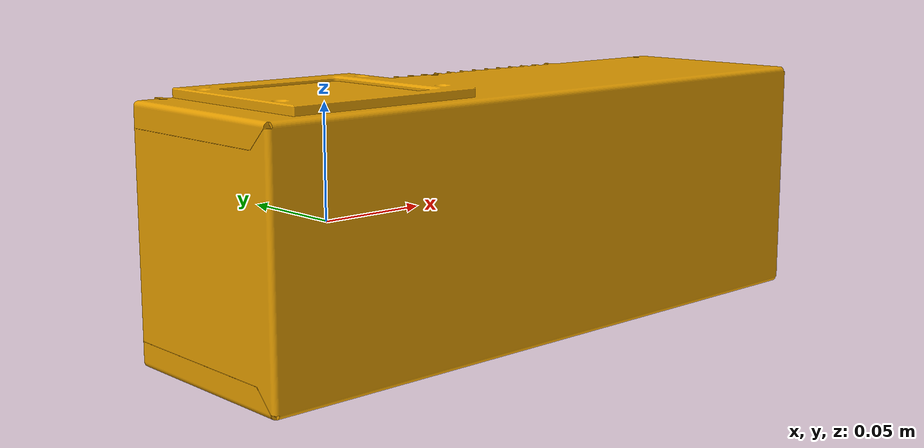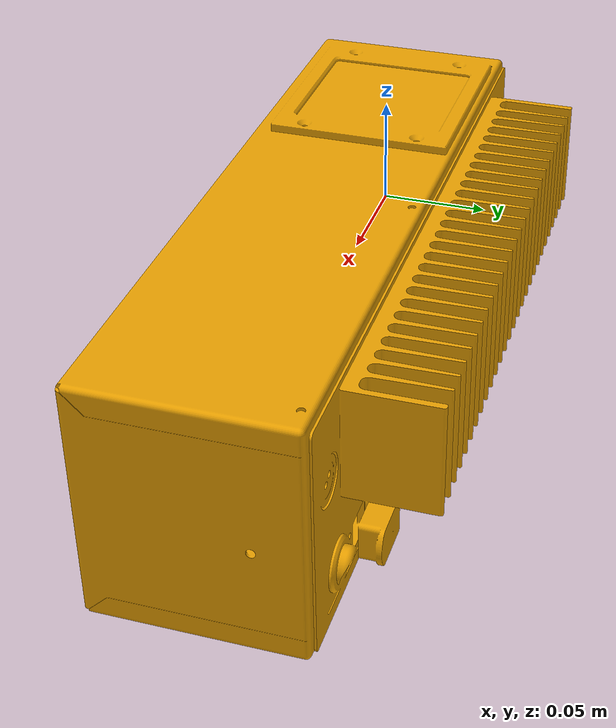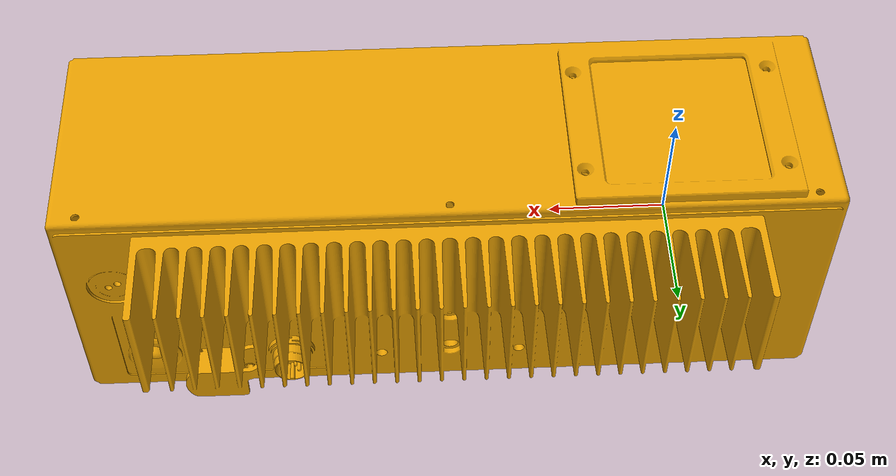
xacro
<?xml version="1.0"?>

<robot xmlns:xacro="http://ros.org/wiki/xacro" name="zlp1_xacro">

    <!-- ZLP1 laser projector design -->
    <link name="zlp1_link">
        <visual>
            <origin xyz="0.245 0.04 0" rpy="${pi} ${pi/2} 0"/>
            <geometry>
                <mesh filename="file://$(find z_laser_viz)/meshes/zlp1.dae"/>
            </geometry>
        </visual>
        <collision>
            <origin xyz="0.245 0.04 0" rpy="${pi} ${pi/2} 0"/>
            <geometry>
                <mesh filename="file://$(find z_laser_viz)/meshes/zlp1.stl"/>
            </geometry>
        </collision>
    </link>
</robot>
